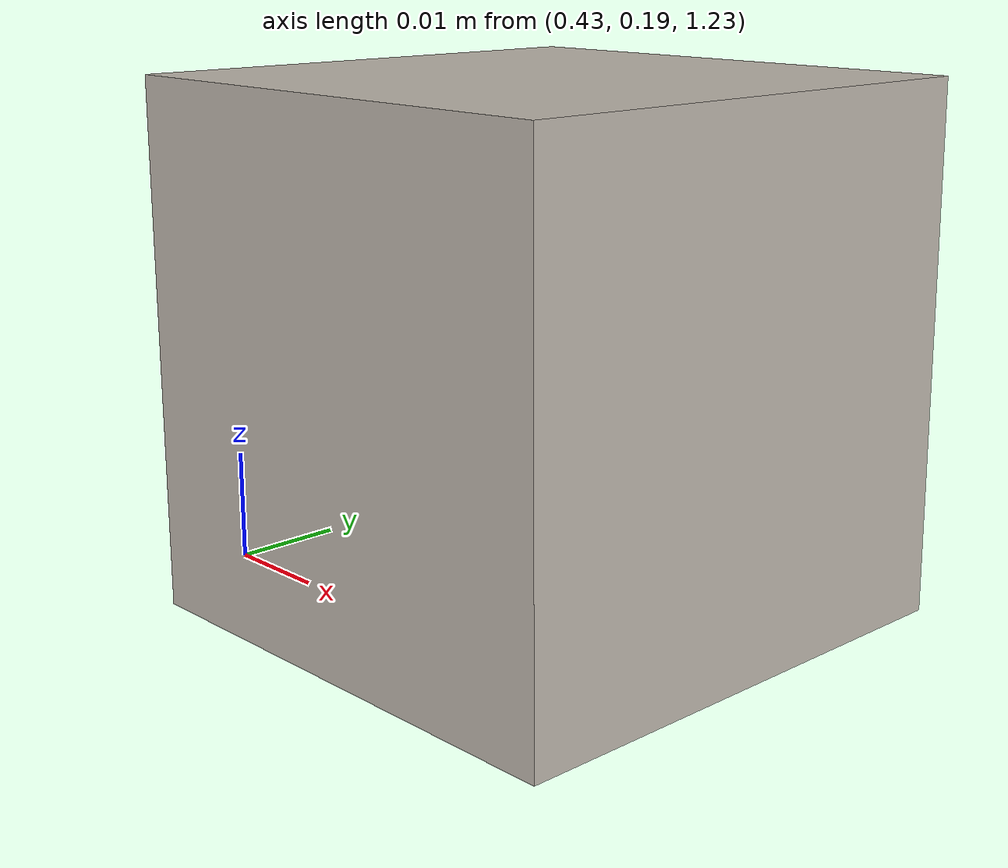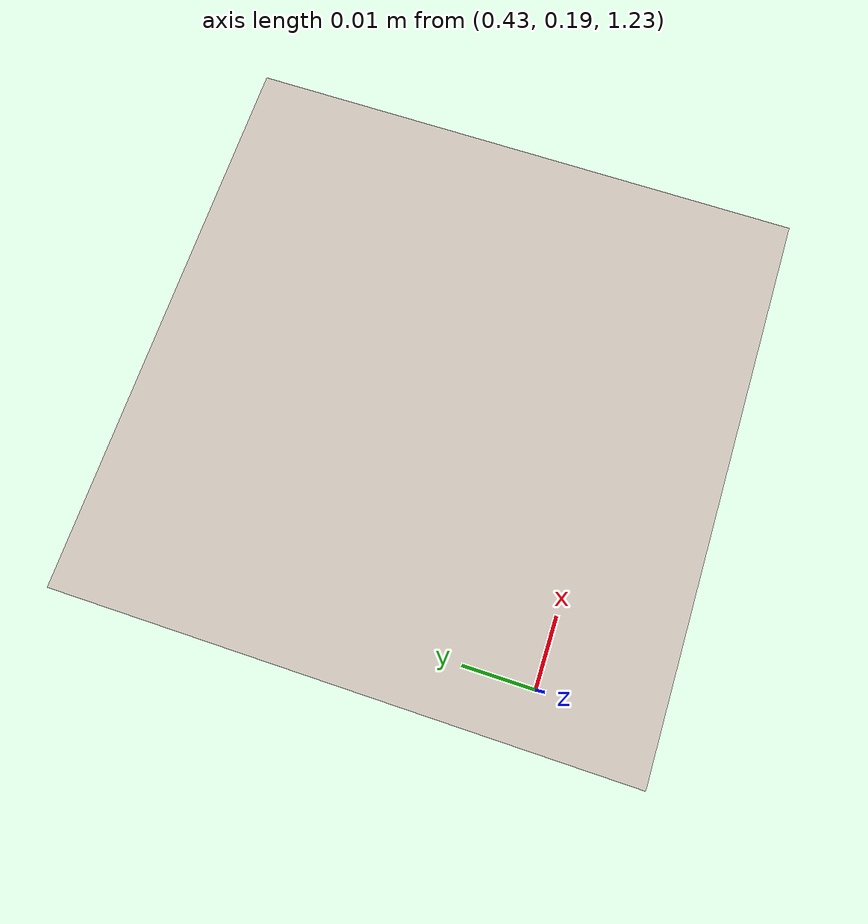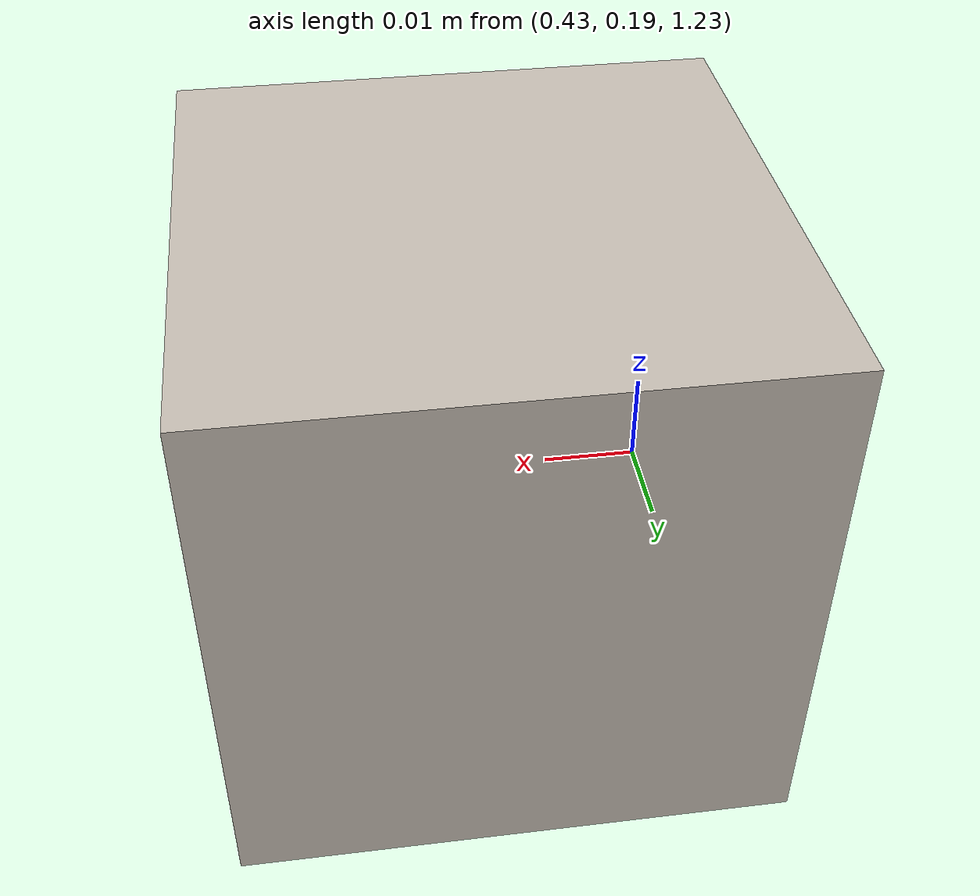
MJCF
<mujoco model="cube_1">
    <asset>
        <material name="black" rgba="0.1 0.1 0.1 1"/>
        <texture name="texture:object" file="block.png" gridsize="3 4" gridlayout=".U..LFRB.D.."></texture>
        <material name="material:object" texture="texture:object" specular="1" shininess="0.3" reflectance="0"></material>
    </asset>

    <default>
        <default class="visual">
            <geom contype="0" conaffinity="0" group="2" material="black"/>
        </default>
        <default class="collision">
            <geom group="3" mass="1" density="0"/>
        </default>
    </default>

    <worldbody>
        <body name="cube_1" pos="0.45 0.21 1.25">
            <geom type="box" pos="0 0 0" size="0.025 0.025 0.025" material="material:object" class="visual" density="500"/>
            <geom type="box" pos="0 0 0" size="0.025 0.025 0.025" class="collision"/>
        </body>
    </worldbody>
</mujoco>
